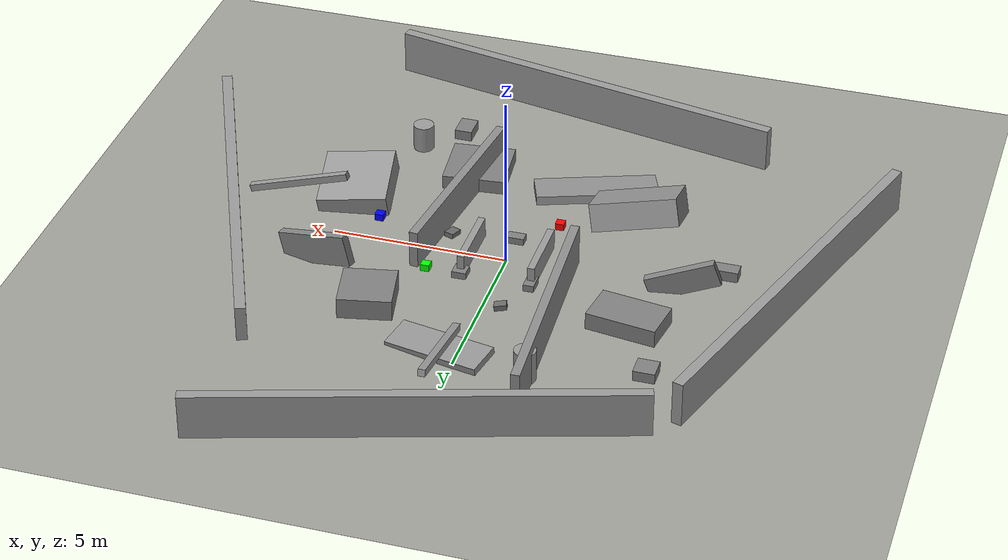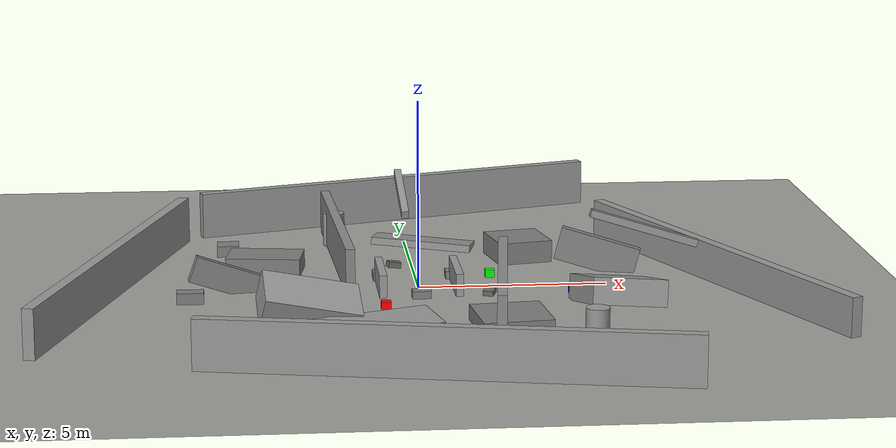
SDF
<?xml version="1.0" ?>
<sdf version="1.7">
  <world name="collapsed_building">
    <!-- Physics Engine -->
    <physics name="1ms" type="ignored">
      <max_step_size>0.001</max_step_size>
      <real_time_factor>1.0</real_time_factor>
    </physics>

    <!-- Lighting -->
    <light type="directional" name="sun">
      <cast_shadows>true</cast_shadows>
      <pose>0 0 10 0 0 0</pose>
      <diffuse>1.0 1.0 1.0 1</diffuse>
      <specular>0.3 0.3 0.3 1</specular>
      <attenuation>
        <range>1000</range>
        <constant>0.9</constant>
        <linear>0.01</linear>
        <quadratic>0.001</quadratic>
      </attenuation>
      <direction>-0.5 0.1 -0.9</direction>
    </light>

    <light type="point" name="ambient">
      <pose>0 0 5 0 0 0</pose>
      <diffuse>0.8 0.8 0.8 1</diffuse>
      <specular>0.2 0.2 0.2 1</specular>
      <attenuation>
        <range>50</range>
        <constant>0.9</constant>
        <linear>0.05</linear>
        <quadratic>0.01</quadratic>
      </attenuation>
    </light>

    <!-- Ground Plane -->
    <model name="ground_plane">
      <static>true</static>
      <link name="link">
        <collision name="collision">
          <geometry>
            <plane>
              <normal>0 0 1</normal>
              <size>50 50</size>
            </plane>
          </geometry>
          <surface>
            <friction>
              <ode>
                <mu>100</mu>
                <mu2>50</mu2>
              </ode>
            </friction>
          </surface>
        </collision>
        <visual name="visual">
          <geometry>
            <plane>
              <normal>0 0 1</normal>
              <size>50 50</size>
            </plane>
          </geometry>
          <material>
            <!-- Slightly darker floor helps obstacles read better -->
            <ambient>0.55 0.55 0.55 1</ambient>
            <diffuse>0.62 0.62 0.60 1</diffuse>
            <specular>0.02 0.02 0.02 1</specular>
          </material>
        </visual>
      </link>
    </model>

    <!-- Interior layout: partial rooms + broken walls (more realistic collapsed-building feel) -->
    <model name="interior_wall_a">
      <static>true</static>
      <pose>-2 3 0.6 0 0 0.05</pose>
      <link name="link">
        <collision name="collision">
          <geometry><box><size>0.25 7 1.2</size></box></geometry>
        </collision>
        <visual name="visual">
          <geometry><box><size>0.25 7 1.2</size></box></geometry>
          <material>
            <ambient>0.45 0.45 0.45 1</ambient>
            <diffuse>0.55 0.55 0.55 1</diffuse>
            <specular>0.08 0.08 0.08 1</specular>
          </material>
        </visual>
      </link>
    </model>

    <model name="interior_wall_b">
      <static>true</static>
      <pose>2 -2 0.55 0 0 -0.12</pose>
      <link name="link">
        <collision name="collision">
          <geometry><box><size>0.25 6 1.1</size></box></geometry>
        </collision>
        <visual name="visual">
          <geometry><box><size>0.25 6 1.1</size></box></geometry>
          <material>
            <ambient>0.45 0.45 0.45 1</ambient>
            <diffuse>0.55 0.55 0.55 1</diffuse>
            <specular>0.08 0.08 0.08 1</specular>
          </material>
        </visual>
      </link>
    </model>

    <!-- Broken wall segments (gaps + tilt) -->
    <model name="broken_wall_seg_1">
      <static>true</static>
      <pose>-5 0 0.35 0.0 0.35 0.15</pose>
      <link name="link">
        <collision name="collision">
          <geometry><box><size>2.0 0.25 0.7</size></box></geometry>
        </collision>
        <visual name="visual">
          <geometry><box><size>2.0 0.25 0.7</size></box></geometry>
          <material>
            <ambient>0.42 0.42 0.42 1</ambient>
            <diffuse>0.52 0.52 0.52 1</diffuse>
            <specular>0.05 0.05 0.05 1</specular>
          </material>
        </visual>
      </link>
    </model>

    <model name="broken_wall_seg_2">
      <static>true</static>
      <pose>5 1.5 0.45 0.0 0.25 -0.25</pose>
      <link name="link">
        <collision name="collision">
          <geometry><box><size>2.2 0.25 0.9</size></box></geometry>
        </collision>
        <visual name="visual">
          <geometry><box><size>2.2 0.25 0.9</size></box></geometry>
          <material>
            <ambient>0.42 0.42 0.42 1</ambient>
            <diffuse>0.52 0.52 0.52 1</diffuse>
            <specular>0.05 0.05 0.05 1</specular>
          </material>
        </visual>
      </link>
    </model>

    <!-- Floor slabs / fallen ceiling pieces -->
    <model name="slab_1">
      <static>true</static>
      <pose>-1.5 -4 0.12 0.12 0.0 0.35</pose>
      <link name="link">
        <collision name="collision">
          <geometry><box><size>3.5 1.2 0.25</size></box></geometry>
        </collision>
        <visual name="visual">
          <geometry><box><size>3.5 1.2 0.25</size></box></geometry>
          <material>
            <ambient>0.48 0.48 0.48 1</ambient>
            <diffuse>0.58 0.58 0.58 1</diffuse>
            <specular>0.08 0.08 0.08 1</specular>
          </material>
        </visual>
      </link>
    </model>

    <model name="slab_2">
      <static>true</static>
      <pose>0.5 4.5 0.10 -0.10 0.05 -0.25</pose>
      <link name="link">
        <collision name="collision">
          <geometry><box><size>2.8 1.0 0.20</size></box></geometry>
        </collision>
        <visual name="visual">
          <geometry><box><size>2.8 1.0 0.20</size></box></geometry>
          <material>
            <ambient>0.48 0.48 0.48 1</ambient>
            <diffuse>0.58 0.58 0.58 1</diffuse>
            <specular>0.08 0.08 0.08 1</specular>
          </material>
        </visual>
      </link>
    </model>

    <!-- Scattered small rubble (varied poses for realism) -->
    <model name="rubble_4">
      <static>true</static>
      <pose>-0.5 2.2 0.08 0.0 0.15 0.25</pose>
      <link name="link">
        <collision name="collision"><geometry><box><size>0.35 0.25 0.16</size></box></geometry></collision>
        <visual name="visual">
          <geometry><box><size>0.35 0.25 0.16</size></box></geometry>
          <material><ambient>0.35 0.35 0.35 1</ambient><diffuse>0.42 0.42 0.42 1</diffuse><specular>0.03 0.03 0.03 1</specular></material>
        </visual>
      </link>
    </model>

    <model name="rubble_5">
      <static>true</static>
      <pose>1.8 -0.8 0.07 0.08 0.0 -0.35</pose>
      <link name="link">
        <collision name="collision"><geometry><box><size>0.28 0.38 0.14</size></box></geometry></collision>
        <visual name="visual">
          <geometry><box><size>0.28 0.38 0.14</size></box></geometry>
          <material><ambient>0.35 0.35 0.35 1</ambient><diffuse>0.42 0.42 0.42 1</diffuse><specular>0.03 0.03 0.03 1</specular></material>
        </visual>
      </link>
    </model>

    <model name="rubble_6">
      <static>true</static>
      <pose>3.5 2.5 0.09 -0.12 0.05 0.18</pose>
      <link name="link">
        <collision name="collision"><geometry><box><size>0.45 0.22 0.18</size></box></geometry></collision>
        <visual name="visual">
          <geometry><box><size>0.45 0.22 0.18</size></box></geometry>
          <material><ambient>0.35 0.35 0.35 1</ambient><diffuse>0.42 0.42 0.42 1</diffuse><specular>0.03 0.03 0.03 1</specular></material>
        </visual>
      </link>
    </model>

    <!-- Main Collapsed Wall 1 (North) -->
    <model name="collapsed_wall_north">
      <static>true</static>
      <pose>0 8 0.5 0 0 0.3</pose>
      <link name="link">
        <collision name="collision">
          <geometry>
            <box>
              <size>12 0.3 1.5</size>
            </box>
          </geometry>
        </collision>
        <visual name="visual">
          <geometry>
            <box>
              <size>12 0.3 1.5</size>
            </box>
          </geometry>
          <material>
            <ambient>0.5 0.5 0.5 1</ambient>
            <diffuse>0.6 0.6 0.6 1</diffuse>
            <specular>0.2 0.2 0.2 1</specular>
          </material>
        </visual>
      </link>
    </model>

    <!-- Main Collapsed Wall 2 (South) -->
    <model name="collapsed_wall_south">
      <static>true</static>
      <pose>0 -8 0.5 0 0 -0.2</pose>
      <link name="link">
        <collision name="collision">
          <geometry>
            <box>
              <size>12 0.3 1.5</size>
            </box>
          </geometry>
        </collision>
        <visual name="visual">
          <geometry>
            <box>
              <size>12 0.3 1.5</size>
            </box>
          </geometry>
          <material>
            <ambient>0.5 0.5 0.5 1</ambient>
            <diffuse>0.6 0.6 0.6 1</diffuse>
            <specular>0.2 0.2 0.2 1</specular>
          </material>
        </visual>
      </link>
    </model>

    <!-- Collapsed Wall 3 (East) -->
    <model name="collapsed_wall_east">
      <static>true</static>
      <pose>8 0 0.4 0 0 0.4</pose>
      <link name="link">
        <collision name="collision">
          <geometry>
            <box>
              <size>0.3 12 1.2</size>
            </box>
          </geometry>
        </collision>
        <visual name="visual">
          <geometry>
            <box>
              <size>0.3 12 1.2</size>
            </box>
          </geometry>
          <material>
            <ambient>0.5 0.5 0.5 1</ambient>
            <diffuse>0.6 0.6 0.6 1</diffuse>
            <specular>0.2 0.2 0.2 1</specular>
          </material>
        </visual>
      </link>
    </model>

    <!-- Collapsed Wall 4 (West) -->
    <model name="collapsed_wall_west">
      <static>true</static>
      <pose>-8 0 0.5 0 0 -0.3</pose>
      <link name="link">
        <collision name="collision">
          <geometry>
            <box>
              <size>0.3 12 1.5</size>
            </box>
          </geometry>
        </collision>
        <visual name="visual">
          <geometry>
            <box>
              <size>0.3 12 1.5</size>
            </box>
          </geometry>
          <material>
            <ambient>0.5 0.5 0.5 1</ambient>
            <diffuse>0.6 0.6 0.6 1</diffuse>
            <specular>0.2 0.2 0.2 1</specular>
          </material>
        </visual>
      </link>
    </model>

    <!-- Debris Pile 1 -->
    <model name="debris_pile_1">
      <static>true</static>
      <pose>3 3 0.3 0 0 0.2</pose>
      <link name="link">
        <collision name="collision">
          <geometry>
            <box>
              <size>1.5 1.5 0.6</size>
            </box>
          </geometry>
        </collision>
        <visual name="visual">
          <geometry>
            <box>
              <size>1.5 1.5 0.6</size>
            </box>
          </geometry>
          <material>
            <ambient>0.4 0.4 0.4 1</ambient>
            <diffuse>0.5 0.5 0.5 1</diffuse>
            <specular>0.1 0.1 0.1 1</specular>
          </material>
        </visual>
      </link>
    </model>

    <!-- Debris Pile 2 -->
    <model name="debris_pile_2">
      <static>true</static>
      <pose>-4 2 0.25 0 0 -0.15</pose>
      <link name="link">
        <collision name="collision">
          <geometry>
            <box>
              <size>2 1.2 0.5</size>
            </box>
          </geometry>
        </collision>
        <visual name="visual">
          <geometry>
            <box>
              <size>2 1.2 0.5</size>
            </box>
          </geometry>
          <material>
            <ambient>0.4 0.4 0.4 1</ambient>
            <diffuse>0.5 0.5 0.5 1</diffuse>
            <specular>0.1 0.1 0.1 1</specular>
          </material>
        </visual>
      </link>
    </model>

    <!-- Debris Pile 3 -->
    <model name="debris_pile_3">
      <static>true</static>
      <pose>2 -4 0.2 0 0 0.1</pose>
      <link name="link">
        <collision name="collision">
          <geometry>
            <box>
              <size>1.8 1.8 0.4</size>
            </box>
          </geometry>
        </collision>
        <visual name="visual">
          <geometry>
            <box>
              <size>1.8 1.8 0.4</size>
            </box>
          </geometry>
          <material>
            <ambient>0.4 0.4 0.4 1</ambient>
            <diffuse>0.5 0.5 0.5 1</diffuse>
            <specular>0.1 0.1 0.1 1</specular>
          </material>
        </visual>
      </link>
    </model>

    <!-- Large Debris Block 1 -->
    <model name="large_debris_1">
      <static>true</static>
      <pose>-3 -3 0.4 0.3 0.2 0.1</pose>
      <link name="link">
        <collision name="collision">
          <geometry>
            <box>
              <size>2.5 1.5 0.8</size>
            </box>
          </geometry>
        </collision>
        <visual name="visual">
          <geometry>
            <box>
              <size>2.5 1.5 0.8</size>
            </box>
          </geometry>
          <material>
            <ambient>0.5 0.5 0.5 1</ambient>
            <diffuse>0.6 0.6 0.6 1</diffuse>
            <specular>0.2 0.2 0.2 1</specular>
          </material>
        </visual>
      </link>
    </model>

    <!-- Large Debris Block 2 -->
    <model name="large_debris_2">
      <static>true</static>
      <pose>5 -2 0.35 -0.2 0.1 0.15</pose>
      <link name="link">
        <collision name="collision">
          <geometry>
            <box>
              <size>2 2 0.7</size>
            </box>
          </geometry>
        </collision>
        <visual name="visual">
          <geometry>
            <box>
              <size>2 2 0.7</size>
            </box>
          </geometry>
          <material>
            <ambient>0.5 0.5 0.5 1</ambient>
            <diffuse>0.6 0.6 0.6 1</diffuse>
            <specular>0.2 0.2 0.2 1</specular>
          </material>
        </visual>
      </link>
    </model>

    <!-- Collapsed Column 1 -->
    <model name="collapsed_column_1">
      <static>true</static>
      <pose>-2 5 0.3 0 0 0.5</pose>
      <link name="link">
        <collision name="collision">
          <geometry>
            <cylinder>
              <radius>0.3</radius>
              <length>1.2</length>
            </cylinder>
          </geometry>
        </collision>
        <visual name="visual">
          <geometry>
            <cylinder>
              <radius>0.3</radius>
              <length>1.2</length>
            </cylinder>
          </geometry>
          <material>
            <ambient>0.5 0.5 0.5 1</ambient>
            <diffuse>0.6 0.6 0.6 1</diffuse>
            <specular>0.2 0.2 0.2 1</specular>
          </material>
        </visual>
      </link>
    </model>

    <!-- Collapsed Column 2 -->
    <model name="collapsed_column_2">
      <static>true</static>
      <pose>4 -5 0.25 0 0 -0.3</pose>
      <link name="link">
        <collision name="collision">
          <geometry>
            <cylinder>
              <radius>0.3</radius>
              <length>1.0</length>
            </cylinder>
          </geometry>
        </collision>
        <visual name="visual">
          <geometry>
            <cylinder>
              <radius>0.3</radius>
              <length>1.0</length>
            </cylinder>
          </geometry>
          <material>
            <ambient>0.5 0.5 0.5 1</ambient>
            <diffuse>0.6 0.6 0.6 1</diffuse>
            <specular>0.2 0.2 0.2 1</specular>
          </material>
        </visual>
      </link>
    </model>

    <!-- Small Rubble Pieces -->
    <model name="rubble_1">
      <static>true</static>
      <pose>1 1 0.1 0 0 0</pose>
      <link name="link">
        <collision name="collision">
          <geometry>
            <box>
              <size>0.4 0.4 0.2</size>
            </box>
          </geometry>
        </collision>
        <visual name="visual">
          <geometry>
            <box>
              <size>0.4 0.4 0.2</size>
            </box>
          </geometry>
          <material>
            <ambient>0.4 0.4 0.4 1</ambient>
            <diffuse>0.5 0.5 0.5 1</diffuse>
            <specular>0.1 0.1 0.1 1</specular>
          </material>
        </visual>
      </link>
    </model>

    <model name="rubble_2">
      <static>true</static>
      <pose>-1 1 0.1 0 0 0</pose>
      <link name="link">
        <collision name="collision">
          <geometry>
            <box>
              <size>0.3 0.5 0.2</size>
            </box>
          </geometry>
        </collision>
        <visual name="visual">
          <geometry>
            <box>
              <size>0.3 0.5 0.2</size>
            </box>
          </geometry>
          <material>
            <ambient>0.4 0.4 0.4 1</ambient>
            <diffuse>0.5 0.5 0.5 1</diffuse>
            <specular>0.1 0.1 0.1 1</specular>
          </material>
        </visual>
      </link>
    </model>

    <model name="rubble_3">
      <static>true</static>
      <pose>0 -1 0.1 0 0 0</pose>
      <link name="link">
        <collision name="collision">
          <geometry>
            <box>
              <size>0.5 0.3 0.2</size>
            </box>
          </geometry>
        </collision>
        <visual name="visual">
          <geometry>
            <box>
              <size>0.5 0.3 0.2</size>
            </box>
          </geometry>
          <material>
            <ambient>0.4 0.4 0.4 1</ambient>
            <diffuse>0.5 0.5 0.5 1</diffuse>
            <specular>0.1 0.1 0.1 1</specular>
          </material>
        </visual>
      </link>
    </model>

    <!-- Overhanging Beam 1 -->
    <model name="overhanging_beam_1">
      <static>true</static>
      <pose>6 0 1.5 0 0.3 0</pose>
      <link name="link">
        <collision name="collision">
          <geometry>
            <box>
              <size>3 0.2 0.2</size>
            </box>
          </geometry>
        </collision>
        <visual name="visual">
          <geometry>
            <box>
              <size>3 0.2 0.2</size>
            </box>
          </geometry>
          <material>
            <ambient>0.5 0.5 0.5 1</ambient>
            <diffuse>0.6 0.6 0.6 1</diffuse>
            <specular>0.2 0.2 0.2 1</specular>
          </material>
        </visual>
      </link>
    </model>

    <!-- Overhanging Beam 2 -->
    <model name="overhanging_beam_2">
      <static>true</static>
      <pose>0 6 1.2 0.2 0 0</pose>
      <link name="link">
        <collision name="collision">
          <geometry>
            <box>
              <size>0.2 3 0.2</size>
            </box>
          </geometry>
        </collision>
        <visual name="visual">
          <geometry>
            <box>
              <size>0.2 3 0.2</size>
            </box>
          </geometry>
          <material>
            <ambient>0.5 0.5 0.5 1</ambient>
            <diffuse>0.6 0.6 0.6 1</diffuse>
            <specular>0.2 0.2 0.2 1</specular>
          </material>
        </visual>
      </link>
    </model>

    <!-- Narrow Passage (creates challenge for navigation) -->
    <model name="narrow_passage_wall_1">
      <static>true</static>
      <pose>-1 0 0.3 0 0 0</pose>
      <link name="link">
        <collision name="collision">
          <geometry>
            <box>
              <size>0.2 2 0.6</size>
            </box>
          </geometry>
        </collision>
        <visual name="visual">
          <geometry>
            <box>
              <size>0.2 2 0.6</size>
            </box>
          </geometry>
          <material>
            <ambient>0.5 0.5 0.5 1</ambient>
            <diffuse>0.6 0.6 0.6 1</diffuse>
            <specular>0.2 0.2 0.2 1</specular>
          </material>
        </visual>
      </link>
    </model>

    <model name="narrow_passage_wall_2">
      <static>true</static>
      <pose>1 0 0.3 0 0 0</pose>
      <link name="link">
        <collision name="collision">
          <geometry>
            <box>
              <size>0.2 2 0.6</size>
            </box>
          </geometry>
        </collision>
        <visual name="visual">
          <geometry>
            <box>
              <size>0.2 2 0.6</size>
            </box>
          </geometry>
          <material>
            <ambient>0.5 0.5 0.5 1</ambient>
            <diffuse>0.6 0.6 0.6 1</diffuse>
            <specular>0.2 0.2 0.2 1</specular>
          </material>
        </visual>
      </link>
    </model>

    <!-- Additional scattered debris for realism -->
    <model name="scattered_debris_1">
      <static>true</static>
      <pose>-5 4 0.15 0 0 0</pose>
      <link name="link">
        <collision name="collision">
          <geometry>
            <box>
              <size>0.6 0.6 0.3</size>
            </box>
          </geometry>
        </collision>
        <visual name="visual">
          <geometry>
            <box>
              <size>0.6 0.6 0.3</size>
            </box>
          </geometry>
          <material>
            <ambient>0.4 0.4 0.4 1</ambient>
            <diffuse>0.5 0.5 0.5 1</diffuse>
            <specular>0.1 0.1 0.1 1</specular>
          </material>
        </visual>
      </link>
    </model>

    <model name="scattered_debris_2">
      <static>true</static>
      <pose>3 -6 0.15 0 0 0</pose>
      <link name="link">
        <collision name="collision">
          <geometry>
            <box>
              <size>0.5 0.7 0.3</size>
            </box>
          </geometry>
        </collision>
        <visual name="visual">
          <geometry>
            <box>
              <size>0.5 0.7 0.3</size>
            </box>
          </geometry>
          <material>
            <ambient>0.4 0.4 0.4 1</ambient>
            <diffuse>0.5 0.5 0.5 1</diffuse>
            <specular>0.1 0.1 0.1 1</specular>
          </material>
        </visual>
      </link>
    </model>

    <model name="scattered_debris_3">
      <static>true</static>
      <pose>-6 -1 0.15 0 0 0</pose>
      <link name="link">
        <collision name="collision">
          <geometry>
            <box>
              <size>0.7 0.4 0.3</size>
            </box>
          </geometry>
        </collision>
        <visual name="visual">
          <geometry>
            <box>
              <size>0.7 0.4 0.3</size>
            </box>
          </geometry>
          <material>
            <ambient>0.4 0.4 0.4 1</ambient>
            <diffuse>0.5 0.5 0.5 1</diffuse>
            <specular>0.1 0.1 0.1 1</specular>
          </material>
        </visual>
      </link>
    </model>

    <!-- Scene Configuration -->
    <scene>
      <ambient>0.7 0.7 0.7 1</ambient>
      <background>0.9 0.9 0.95 1</background>
      <shadows>true</shadows>
    </scene>

    <!-- GUI Plugin -->
    <gui fullscreen="0">
      <camera name="user_camera">
        <pose>5 -5 2 0 0.275643 2.35619</pose>
        <view_controller>orbit</view_controller>
        <projection_type>perspective</projection_type>
      </camera>
    </gui>

    <!-- Victim markers: simple colored boxes placed in the scene -->
    <model name="victim_1">
      <static>true</static>
      <pose>-1 -2 0.1 0 0 0</pose>
      <link name="link">
        <collision name="collision">
          <geometry><box><size>0.25 0.25 0.2</size></box></geometry>
        </collision>
        <visual name="visual">
          <geometry><box><size>0.25 0.25 0.2</size></box></geometry>
          <material>
            <ambient>1 0 0 1</ambient>
            <diffuse>1 0 0 1</diffuse>
            <specular>0.1 0.1 0.1 1</specular>
          </material>
        </visual>
      </link>
    </model>

    <model name="victim_2">
      <static>true</static>
      <pose>2 1 0.1 0 0 0</pose>
      <link name="link">
        <collision name="collision">
          <geometry><box><size>0.25 0.25 0.2</size></box></geometry>
        </collision>
        <visual name="visual">
          <geometry><box><size>0.25 0.25 0.2</size></box></geometry>
          <material>
            <ambient>0 1 0 1</ambient>
            <diffuse>0 1 0 1</diffuse>
            <specular>0.1 0.1 0.1 1</specular>
          </material>
        </visual>
      </link>
    </model>

    <model name="victim_3">
      <static>true</static>
      <pose>4 -1 0.1 0 0 0</pose>
      <link name="link">
        <collision name="collision">
          <geometry><box><size>0.25 0.25 0.2</size></box></geometry>
        </collision>
        <visual name="visual">
          <geometry><box><size>0.25 0.25 0.2</size></box></geometry>
          <material>
            <ambient>0 0 1 1</ambient>
            <diffuse>0 0 1 1</diffuse>
            <specular>0.1 0.1 0.1 1</specular>
          </material>
        </visual>
      </link>
    </model>

  </world>
</sdf>
